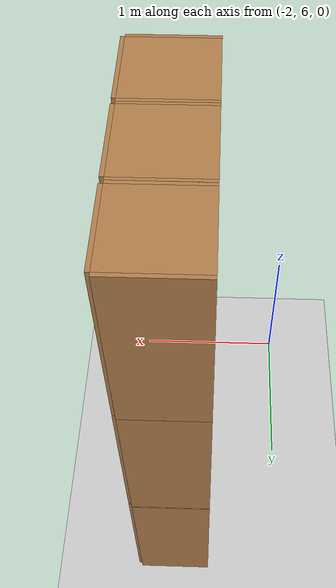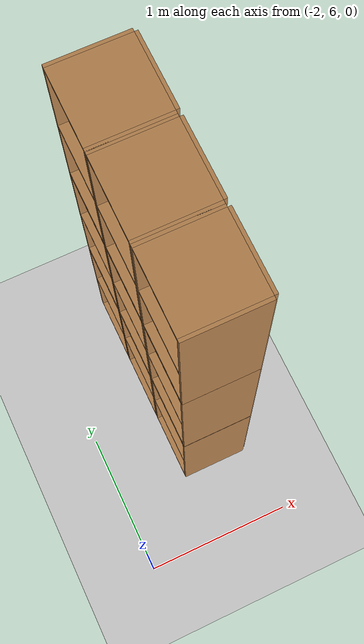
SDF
<sdf version="1.6">
 <world name="default">
  <model name="ground_plane">
   <static>1</static>
   <link name="link">
    <collision name="collision">
     <geometry><plane><normal>0 0 1</normal><size>100 100</size></plane></geometry>
     <surface>
      <contact><collide_bitmask>65535</collide_bitmask></contact>
      <friction><ode><mu>100</mu><mu2>50</mu2></ode></friction>
     </surface>
    </collision>
    <visual name="visual">
     <cast_shadows>0</cast_shadows>
     <geometry><plane><normal>0 0 1</normal><size>100 100</size></plane></geometry>
     <material>
      <script><uri>file://media/materials/scripts/gazebo.material</uri><name>Gazebo/Grey</name></script>
     </material>
    </visual>
   </link>
  </model>
  <model name="Locker18_clone_4_clone_2_clone_2">
   <model name="Locker18">
    <model name="Locker3">
     <model name="cabinet">
      <static>1</static>
      <link name="cabinet_bottom_plate">
       <inertial>
        <pose>0 0 -1 0 -0 0</pose>
        <inertia><ixx>2.05</ixx><ixy>0</ixy><ixz>0</ixz><iyy>2.05</iyy><iyz>0</iyz><izz>2.05</izz></inertia>
        <mass>25</mass>
       </inertial>
       <collision name="cabinet_bottom_plate_geom">
        <pose>0 0 0.01 0 -0 0</pose>
        <geometry><box><size>0.45 0.45 0.02</size></box></geometry>
       </collision>
       <visual name="cabinet_bottom_plate_geom_visual">
        <pose>0 0 0.01 0 -0 0</pose>
        <geometry><box><size>0.45 0.45 0.02</size></box></geometry>
        <material>
         <script><uri>file://media/materials/scripts/gazebo.material</uri><name>Gazebo/Wood</name></script>
        </material>
       </visual>
       <collision name="cabinet_bottom_plate_geom_cabinet_back_plate">
        <pose>0.235 0 0.51 0 -0 0</pose>
        <geometry><box><size>0.02 0.45 1.02</size></box></geometry>
       </collision>
       <visual name="cabinet_bottom_plate_geom_cabinet_back_plate_visual">
        <pose>0.235 0 0.51 0 -0 0</pose>
        <geometry><box><size>0.02 0.45 1.02</size></box></geometry>
        <material>
         <script><uri>file://media/materials/scripts/gazebo.material</uri><name>Gazebo/Wood</name></script>
        </material>
       </visual>
       <collision name="cabinet_bottom_plate_geom_cabinet_left_plate">
        <pose>0 0.235 0.51 0 -0 0</pose>
        <geometry><box><size>0.45 0.02 1.02</size></box></geometry>
       </collision>
       <visual name="cabinet_bottom_plate_geom_cabinet_left_plate_visual">
        <pose>0 0.235 0.51 0 -0 0</pose>
        <geometry><box><size>0.45 0.02 1.02</size></box></geometry>
        <material>
         <script><uri>file://media/materials/scripts/gazebo.material</uri><name>Gazebo/Wood</name></script>
        </material>
       </visual>
       <collision name="cabinet_bottom_plate_geom_cabinet_middle_plate">
        <pose>0 0 0.51 0 -0 0</pose>
        <geometry><box><size>0.45 0.45 0.02</size></box></geometry>
       </collision>
       <visual name="cabinet_bottom_plate_geom_cabinet_middle_plate_visual">
        <pose>0 0 0.51 0 -0 0</pose>
        <geometry><box><size>0.45 0.45 0.02</size></box></geometry>
        <material>
         <script><uri>file://media/materials/scripts/gazebo.material</uri><name>Gazebo/Wood</name></script>
        </material>
       </visual>
       <collision name="cabinet_bottom_plate_geom_cabinet_right_plate">
        <pose>0 -0.235 0.51 0 -0 0</pose>
        <geometry><box><size>0.45 0.02 1.02</size></box></geometry>
       </collision>
       <visual name="cabinet_bottom_plate_geom_cabinet_right_plate_visual">
        <pose>0 -0.235 0.51 0 -0 0</pose>
        <geometry><box><size>0.45 0.02 1.02</size></box></geometry>
        <material>
         <script><uri>file://media/materials/scripts/gazebo.material</uri><name>Gazebo/Wood</name></script>
        </material>
       </visual>
       <collision name="cabinet_bottom_plate_geom_cabinet_top_plate">
        <pose>0 0 1.01 0 -0 0</pose>
        <geometry><box><size>0.45 0.45 0.02</size></box></geometry>
       </collision>
       <visual name="cabinet_bottom_plate_geom_cabinet_top_plate_visual">
        <pose>0 0 1.01 0 -0 0</pose>
        <geometry><box><size>0.45 0.45 0.02</size></box></geometry>
        <material>
         <script><uri>file://media/materials/scripts/gazebo.material</uri><name>Gazebo/Wood</name></script>
        </material>
       </visual>
      </link>
      <pose>-0.676968 1.45758 0 0 -0 0</pose>
     </model>
     <model name="cabinet_clone">
      <static>1</static>
      <link name="cabinet_bottom_plate">
       <inertial>
        <pose>0 0 -1 0 -0 0</pose>
        <inertia><ixx>2.05</ixx><ixy>0</ixy><ixz>0</ixz><iyy>2.05</iyy><iyz>0</iyz><izz>2.05</izz></inertia>
        <mass>25</mass>
       </inertial>
       <collision name="cabinet_bottom_plate_geom">
        <pose>0 0 0.01 0 -0 0</pose>
        <geometry><box><size>0.45 0.45 0.02</size></box></geometry>
       </collision>
       <visual name="cabinet_bottom_plate_geom_visual">
        <pose>0 0 0.01 0 -0 0</pose>
        <geometry><box><size>0.45 0.45 0.02</size></box></geometry>
        <material>
         <script><uri>file://media/materials/scripts/gazebo.material</uri><name>Gazebo/Wood</name></script>
        </material>
       </visual>
       <collision name="cabinet_bottom_plate_geom_cabinet_back_plate">
        <pose>0.235 0 0.51 0 -0 0</pose>
        <geometry><box><size>0.02 0.45 1.02</size></box></geometry>
       </collision>
       <visual name="cabinet_bottom_plate_geom_cabinet_back_plate_visual">
        <pose>0.235 0 0.51 0 -0 0</pose>
        <geometry><box><size>0.02 0.45 1.02</size></box></geometry>
        <material>
         <script><uri>file://media/materials/scripts/gazebo.material</uri><name>Gazebo/Wood</name></script>
        </material>
       </visual>
       <collision name="cabinet_bottom_plate_geom_cabinet_left_plate">
        <pose>0 0.235 0.51 0 -0 0</pose>
        <geometry><box><size>0.45 0.02 1.02</size></box></geometry>
       </collision>
       <visual name="cabinet_bottom_plate_geom_cabinet_left_plate_visual">
        <pose>0 0.235 0.51 0 -0 0</pose>
        <geometry><box><size>0.45 0.02 1.02</size></box></geometry>
        <material>
         <script><uri>file://media/materials/scripts/gazebo.material</uri><name>Gazebo/Wood</name></script>
        </material>
       </visual>
       <collision name="cabinet_bottom_plate_geom_cabinet_middle_plate">
        <pose>0 0 0.51 0 -0 0</pose>
        <geometry><box><size>0.45 0.45 0.02</size></box></geometry>
       </collision>
       <visual name="cabinet_bottom_plate_geom_cabinet_middle_plate_visual">
        <pose>0 0 0.51 0 -0 0</pose>
        <geometry><box><size>0.45 0.45 0.02</size></box></geometry>
        <material>
         <script><uri>file://media/materials/scripts/gazebo.material</uri><name>Gazebo/Wood</name></script>
        </material>
       </visual>
       <collision name="cabinet_bottom_plate_geom_cabinet_right_plate">
        <pose>0 -0.235 0.51 0 -0 0</pose>
        <geometry><box><size>0.45 0.02 1.02</size></box></geometry>
       </collision>
       <visual name="cabinet_bottom_plate_geom_cabinet_right_plate_visual">
        <pose>0 -0.235 0.51 0 -0 0</pose>
        <geometry><box><size>0.45 0.02 1.02</size></box></geometry>
        <material>
         <script><uri>file://media/materials/scripts/gazebo.material</uri><name>Gazebo/Wood</name></script>
        </material>
       </visual>
       <collision name="cabinet_bottom_plate_geom_cabinet_top_plate">
        <pose>0 0 1.01 0 -0 0</pose>
        <geometry><box><size>0.45 0.45 0.02</size></box></geometry>
       </collision>
       <visual name="cabinet_bottom_plate_geom_cabinet_top_plate_visual">
        <pose>0 0 1.01 0 -0 0</pose>
        <geometry><box><size>0.45 0.45 0.02</size></box></geometry>
        <material>
         <script><uri>file://media/materials/scripts/gazebo.material</uri><name>Gazebo/Wood</name></script>
        </material>
       </visual>
      </link>
      <pose>-0.676968 0.970971 0 0 -0 0</pose>
     </model>
     <model name="cabinet_clone_0">
      <static>1</static>
      <link name="cabinet_bottom_plate">
       <inertial>
        <pose>0 0 -1 0 -0 0</pose>
        <inertia><ixx>2.05</ixx><ixy>0</ixy><ixz>0</ixz><iyy>2.05</iyy><iyz>0</iyz><izz>2.05</izz></inertia>
        <mass>25</mass>
       </inertial>
       <collision name="cabinet_bottom_plate_geom">
        <pose>0 0 0.01 0 -0 0</pose>
        <geometry><box><size>0.45 0.45 0.02</size></box></geometry>
       </collision>
       <visual name="cabinet_bottom_plate_geom_visual">
        <pose>0 0 0.01 0 -0 0</pose>
        <geometry><box><size>0.45 0.45 0.02</size></box></geometry>
        <material>
         <script><uri>file://media/materials/scripts/gazebo.material</uri><name>Gazebo/Wood</name></script>
        </material>
       </visual>
       <collision name="cabinet_bottom_plate_geom_cabinet_back_plate">
        <pose>0.235 0 0.51 0 -0 0</pose>
        <geometry><box><size>0.02 0.45 1.02</size></box></geometry>
       </collision>
       <visual name="cabinet_bottom_plate_geom_cabinet_back_plate_visual">
        <pose>0.235 0 0.51 0 -0 0</pose>
        <geometry><box><size>0.02 0.45 1.02</size></box></geometry>
        <material>
         <script><uri>file://media/materials/scripts/gazebo.material</uri><name>Gazebo/Wood</name></script>
        </material>
       </visual>
       <collision name="cabinet_bottom_plate_geom_cabinet_left_plate">
        <pose>0 0.235 0.51 0 -0 0</pose>
        <geometry><box><size>0.45 0.02 1.02</size></box></geometry>
       </collision>
       <visual name="cabinet_bottom_plate_geom_cabinet_left_plate_visual">
        <pose>0 0.235 0.51 0 -0 0</pose>
        <geometry><box><size>0.45 0.02 1.02</size></box></geometry>
        <material>
         <script><uri>file://media/materials/scripts/gazebo.material</uri><name>Gazebo/Wood</name></script>
        </material>
       </visual>
       <collision name="cabinet_bottom_plate_geom_cabinet_middle_plate">
        <pose>0 0 0.51 0 -0 0</pose>
        <geometry><box><size>0.45 0.45 0.02</size></box></geometry>
       </collision>
       <visual name="cabinet_bottom_plate_geom_cabinet_middle_plate_visual">
        <pose>0 0 0.51 0 -0 0</pose>
        <geometry><box><size>0.45 0.45 0.02</size></box></geometry>
        <material>
         <script><uri>file://media/materials/scripts/gazebo.material</uri><name>Gazebo/Wood</name></script>
        </material>
       </visual>
       <collision name="cabinet_bottom_plate_geom_cabinet_right_plate">
        <pose>0 -0.235 0.51 0 -0 0</pose>
        <geometry><box><size>0.45 0.02 1.02</size></box></geometry>
       </collision>
       <visual name="cabinet_bottom_plate_geom_cabinet_right_plate_visual">
        <pose>0 -0.235 0.51 0 -0 0</pose>
        <geometry><box><size>0.45 0.02 1.02</size></box></geometry>
        <material>
         <script><uri>file://media/materials/scripts/gazebo.material</uri><name>Gazebo/Wood</name></script>
        </material>
       </visual>
       <collision name="cabinet_bottom_plate_geom_cabinet_top_plate">
        <pose>0 0 1.01 0 -0 0</pose>
        <geometry><box><size>0.45 0.45 0.02</size></box></geometry>
       </collision>
       <visual name="cabinet_bottom_plate_geom_cabinet_top_plate_visual">
        <pose>0 0 1.01 0 -0 0</pose>
        <geometry><box><size>0.45 0.45 0.02</size></box></geometry>
        <material>
         <script><uri>file://media/materials/scripts/gazebo.material</uri><name>Gazebo/Wood</name></script>
        </material>
       </visual>
      </link>
      <pose>-0.676968 0.48391 0 0 -0 0</pose>
     </model>
     <static>0</static>
     <pose>0 3e-06 -1.02763 0 -0 0</pose>
    </model>
    <model name="Locker3_clone">
     <model name="cabinet">
      <static>1</static>
      <link name="cabinet_bottom_plate">
       <inertial>
        <pose>0 0 -1 0 -0 0</pose>
        <inertia><ixx>2.05</ixx><ixy>0</ixy><ixz>0</ixz><iyy>2.05</iyy><iyz>0</iyz><izz>2.05</izz></inertia>
        <mass>25</mass>
       </inertial>
       <collision name="cabinet_bottom_plate_geom">
        <pose>0 0 0.01 0 -0 0</pose>
        <geometry><box><size>0.45 0.45 0.02</size></box></geometry>
       </collision>
       <visual name="cabinet_bottom_plate_geom_visual">
        <pose>0 0 0.01 0 -0 0</pose>
        <geometry><box><size>0.45 0.45 0.02</size></box></geometry>
        <material>
         <script><uri>file://media/materials/scripts/gazebo.material</uri><name>Gazebo/Wood</name></script>
        </material>
       </visual>
       <collision name="cabinet_bottom_plate_geom_cabinet_back_plate">
        <pose>0.235 0 0.51 0 -0 0</pose>
        <geometry><box><size>0.02 0.45 1.02</size></box></geometry>
       </collision>
       <visual name="cabinet_bottom_plate_geom_cabinet_back_plate_visual">
        <pose>0.235 0 0.51 0 -0 0</pose>
        <geometry><box><size>0.02 0.45 1.02</size></box></geometry>
        <material>
         <script><uri>file://media/materials/scripts/gazebo.material</uri><name>Gazebo/Wood</name></script>
        </material>
       </visual>
       <collision name="cabinet_bottom_plate_geom_cabinet_left_plate">
        <pose>0 0.235 0.51 0 -0 0</pose>
        <geometry><box><size>0.45 0.02 1.02</size></box></geometry>
       </collision>
       <visual name="cabinet_bottom_plate_geom_cabinet_left_plate_visual">
        <pose>0 0.235 0.51 0 -0 0</pose>
        <geometry><box><size>0.45 0.02 1.02</size></box></geometry>
        <material>
         <script><uri>file://media/materials/scripts/gazebo.material</uri><name>Gazebo/Wood</name></script>
        </material>
       </visual>
       <collision name="cabinet_bottom_plate_geom_cabinet_middle_plate">
        <pose>0 0 0.51 0 -0 0</pose>
        <geometry><box><size>0.45 0.45 0.02</size></box></geometry>
       </collision>
       <visual name="cabinet_bottom_plate_geom_cabinet_middle_plate_visual">
        <pose>0 0 0.51 0 -0 0</pose>
        <geometry><box><size>0.45 0.45 0.02</size></box></geometry>
        <material>
         <script><uri>file://media/materials/scripts/gazebo.material</uri><name>Gazebo/Wood</name></script>
        </material>
       </visual>
       <collision name="cabinet_bottom_plate_geom_cabinet_right_plate">
        <pose>0 -0.235 0.51 0 -0 0</pose>
        <geometry><box><size>0.45 0.02 1.02</size></box></geometry>
       </collision>
       <visual name="cabinet_bottom_plate_geom_cabinet_right_plate_visual">
        <pose>0 -0.235 0.51 0 -0 0</pose>
        <geometry><box><size>0.45 0.02 1.02</size></box></geometry>
        <material>
         <script><uri>file://media/materials/scripts/gazebo.material</uri><name>Gazebo/Wood</name></script>
        </material>
       </visual>
       <collision name="cabinet_bottom_plate_geom_cabinet_top_plate">
        <pose>0 0 1.01 0 -0 0</pose>
        <geometry><box><size>0.45 0.45 0.02</size></box></geometry>
       </collision>
       <visual name="cabinet_bottom_plate_geom_cabinet_top_plate_visual">
        <pose>0 0 1.01 0 -0 0</pose>
        <geometry><box><size>0.45 0.45 0.02</size></box></geometry>
        <material>
         <script><uri>file://media/materials/scripts/gazebo.material</uri><name>Gazebo/Wood</name></script>
        </material>
       </visual>
      </link>
      <pose>-0.676968 1.45758 0 0 -0 0</pose>
     </model>
     <model name="cabinet_clone">
      <static>1</static>
      <link name="cabinet_bottom_plate">
       <inertial>
        <pose>0 0 -1 0 -0 0</pose>
        <inertia><ixx>2.05</ixx><ixy>0</ixy><ixz>0</ixz><iyy>2.05</iyy><iyz>0</iyz><izz>2.05</izz></inertia>
        <mass>25</mass>
       </inertial>
       <collision name="cabinet_bottom_plate_geom">
        <pose>0 0 0.01 0 -0 0</pose>
        <geometry><box><size>0.45 0.45 0.02</size></box></geometry>
       </collision>
       <visual name="cabinet_bottom_plate_geom_visual">
        <pose>0 0 0.01 0 -0 0</pose>
        <geometry><box><size>0.45 0.45 0.02</size></box></geometry>
        <material>
         <script><uri>file://media/materials/scripts/gazebo.material</uri><name>Gazebo/Wood</name></script>
        </material>
       </visual>
       <collision name="cabinet_bottom_plate_geom_cabinet_back_plate">
        <pose>0.235 0 0.51 0 -0 0</pose>
        <geometry><box><size>0.02 0.45 1.02</size></box></geometry>
       </collision>
       <visual name="cabinet_bottom_plate_geom_cabinet_back_plate_visual">
        <pose>0.235 0 0.51 0 -0 0</pose>
        <geometry><box><size>0.02 0.45 1.02</size></box></geometry>
        <material>
         <script><uri>file://media/materials/scripts/gazebo.material</uri><name>Gazebo/Wood</name></script>
        </material>
       </visual>
       <collision name="cabinet_bottom_plate_geom_cabinet_left_plate">
        <pose>0 0.235 0.51 0 -0 0</pose>
        <geometry><box><size>0.45 0.02 1.02</size></box></geometry>
       </collision>
       <visual name="cabinet_bottom_plate_geom_cabinet_left_plate_visual">
        <pose>0 0.235 0.51 0 -0 0</pose>
        <geometry><box><size>0.45 0.02 1.02</size></box></geometry>
        <material>
         <script><uri>file://media/materials/scripts/gazebo.material</uri><name>Gazebo/Wood</name></script>
        </material>
       </visual>
       <collision name="cabinet_bottom_plate_geom_cabinet_middle_plate">
        <pose>0 0 0.51 0 -0 0</pose>
        <geometry><box><size>0.45 0.45 0.02</size></box></geometry>
       </collision>
       <visual name="cabinet_bottom_plate_geom_cabinet_middle_plate_visual">
        <pose>0 0 0.51 0 -0 0</pose>
        <geometry><box><size>0.45 0.45 0.02</size></box></geometry>
        <material>
         <script><uri>file://media/materials/scripts/gazebo.material</uri><name>Gazebo/Wood</name></script>
        </material>
       </visual>
       <collision name="cabinet_bottom_plate_geom_cabinet_right_plate">
        <pose>0 -0.235 0.51 0 -0 0</pose>
        <geometry><box><size>0.45 0.02 1.02</size></box></geometry>
       </collision>
       <visual name="cabinet_bottom_plate_geom_cabinet_right_plate_visual">
        <pose>0 -0.235 0.51 0 -0 0</pose>
        <geometry><box><size>0.45 0.02 1.02</size></box></geometry>
        <material>
         <script><uri>file://media/materials/scripts/gazebo.material</uri><name>Gazebo/Wood</name></script>
        </material>
       </visual>
       <collision name="cabinet_bottom_plate_geom_cabinet_top_plate">
        <pose>0 0 1.01 0 -0 0</pose>
        <geometry><box><size>0.45 0.45 0.02</size></box></geometry>
       </collision>
       <visual name="cabinet_bottom_plate_geom_cabinet_top_plate_visual">
        <pose>0 0 1.01 0 -0 0</pose>
        <geometry><box><size>0.45 0.45 0.02</size></box></geometry>
        <material>
         <script><uri>file://media/materials/scripts/gazebo.material</uri><name>Gazebo/Wood</name></script>
        </material>
       </visual>
      </link>
      <pose>-0.676968 0.970971 0 0 -0 0</pose>
     </model>
     <model name="cabinet_clone_0">
      <static>1</static>
      <link name="cabinet_bottom_plate">
       <inertial>
        <pose>0 0 -1 0 -0 0</pose>
        <inertia><ixx>2.05</ixx><ixy>0</ixy><ixz>0</ixz><iyy>2.05</iyy><iyz>0</iyz><izz>2.05</izz></inertia>
        <mass>25</mass>
       </inertial>
       <collision name="cabinet_bottom_plate_geom">
        <pose>0 0 0.01 0 -0 0</pose>
        <geometry><box><size>0.45 0.45 0.02</size></box></geometry>
       </collision>
       <visual name="cabinet_bottom_plate_geom_visual">
        <pose>0 0 0.01 0 -0 0</pose>
        <geometry><box><size>0.45 0.45 0.02</size></box></geometry>
        <material>
         <script><uri>file://media/materials/scripts/gazebo.material</uri><name>Gazebo/Wood</name></script>
        </material>
       </visual>
       <collision name="cabinet_bottom_plate_geom_cabinet_back_plate">
        <pose>0.235 0 0.51 0 -0 0</pose>
        <geometry><box><size>0.02 0.45 1.02</size></box></geometry>
       </collision>
       <visual name="cabinet_bottom_plate_geom_cabinet_back_plate_visual">
        <pose>0.235 0 0.51 0 -0 0</pose>
        <geometry><box><size>0.02 0.45 1.02</size></box></geometry>
        <material>
         <script><uri>file://media/materials/scripts/gazebo.material</uri><name>Gazebo/Wood</name></script>
        </material>
       </visual>
       <collision name="cabinet_bottom_plate_geom_cabinet_left_plate">
        <pose>0 0.235 0.51 0 -0 0</pose>
        <geometry><box><size>0.45 0.02 1.02</size></box></geometry>
       </collision>
       <visual name="cabinet_bottom_plate_geom_cabinet_left_plate_visual">
        <pose>0 0.235 0.51 0 -0 0</pose>
        <geometry><box><size>0.45 0.02 1.02</size></box></geometry>
        <material>
         <script><uri>file://media/materials/scripts/gazebo.material</uri><name>Gazebo/Wood</name></script>
        </material>
       </visual>
       <collision name="cabinet_bottom_plate_geom_cabinet_middle_plate">
        <pose>0 0 0.51 0 -0 0</pose>
        <geometry><box><size>0.45 0.45 0.02</size></box></geometry>
       </collision>
       <visual name="cabinet_bottom_plate_geom_cabinet_middle_plate_visual">
        <pose>0 0 0.51 0 -0 0</pose>
        <geometry><box><size>0.45 0.45 0.02</size></box></geometry>
        <material>
         <script><uri>file://media/materials/scripts/gazebo.material</uri><name>Gazebo/Wood</name></script>
        </material>
       </visual>
       <collision name="cabinet_bottom_plate_geom_cabinet_right_plate">
        <pose>0 -0.235 0.51 0 -0 0</pose>
        <geometry><box><size>0.45 0.02 1.02</size></box></geometry>
       </collision>
       <visual name="cabinet_bottom_plate_geom_cabinet_right_plate_visual">
        <pose>0 -0.235 0.51 0 -0 0</pose>
        <geometry><box><size>0.45 0.02 1.02</size></box></geometry>
        <material>
         <script><uri>file://media/materials/scripts/gazebo.material</uri><name>Gazebo/Wood</name></script>
        </material>
       </visual>
       <collision name="cabinet_bottom_plate_geom_cabinet_top_plate">
        <pose>0 0 1.01 0 -0 0</pose>
        <geometry><box><size>0.45 0.45 0.02</size></box></geometry>
       </collision>
       <visual name="cabinet_bottom_plate_geom_cabinet_top_plate_visual">
        <pose>0 0 1.01 0 -0 0</pose>
        <geometry><box><size>0.45 0.45 0.02</size></box></geometry>
        <material>
         <script><uri>file://media/materials/scripts/gazebo.material</uri><name>Gazebo/Wood</name></script>
        </material>
       </visual>
      </link>
      <pose>-0.676968 0.48391 0 0 -0 0</pose>
     </model>
     <static>0</static>
     <pose>0 3e-06 0.003717 0 -0 0</pose>
    </model>
    <model name="Locker3_clone_clone">
     <model name="cabinet">
      <static>1</static>
      <link name="cabinet_bottom_plate">
       <inertial>
        <pose>0 0 -1 0 -0 0</pose>
        <inertia><ixx>2.05</ixx><ixy>0</ixy><ixz>0</ixz><iyy>2.05</iyy><iyz>0</iyz><izz>2.05</izz></inertia>
        <mass>25</mass>
       </inertial>
       <collision name="cabinet_bottom_plate_geom">
        <pose>0 0 0.01 0 -0 0</pose>
        <geometry><box><size>0.45 0.45 0.02</size></box></geometry>
       </collision>
       <visual name="cabinet_bottom_plate_geom_visual">
        <pose>0 0 0.01 0 -0 0</pose>
        <geometry><box><size>0.45 0.45 0.02</size></box></geometry>
        <material>
         <script><uri>file://media/materials/scripts/gazebo.material</uri><name>Gazebo/Wood</name></script>
        </material>
       </visual>
       <collision name="cabinet_bottom_plate_geom_cabinet_back_plate">
        <pose>0.235 0 0.51 0 -0 0</pose>
        <geometry><box><size>0.02 0.45 1.02</size></box></geometry>
       </collision>
       <visual name="cabinet_bottom_plate_geom_cabinet_back_plate_visual">
        <pose>0.235 0 0.51 0 -0 0</pose>
        <geometry><box><size>0.02 0.45 1.02</size></box></geometry>
        <material>
         <script><uri>file://media/materials/scripts/gazebo.material</uri><name>Gazebo/Wood</name></script>
        </material>
       </visual>
       <collision name="cabinet_bottom_plate_geom_cabinet_left_plate">
        <pose>0 0.235 0.51 0 -0 0</pose>
        <geometry><box><size>0.45 0.02 1.02</size></box></geometry>
       </collision>
       <visual name="cabinet_bottom_plate_geom_cabinet_left_plate_visual">
        <pose>0 0.235 0.51 0 -0 0</pose>
        <geometry><box><size>0.45 0.02 1.02</size></box></geometry>
        <material>
         <script><uri>file://media/materials/scripts/gazebo.material</uri><name>Gazebo/Wood</name></script>
        </material>
       </visual>
       <collision name="cabinet_bottom_plate_geom_cabinet_middle_plate">
        <pose>0 0 0.51 0 -0 0</pose>
        <geometry><box><size>0.45 0.45 0.02</size></box></geometry>
       </collision>
       <visual name="cabinet_bottom_plate_geom_cabinet_middle_plate_visual">
        <pose>0 0 0.51 0 -0 0</pose>
        <geometry><box><size>0.45 0.45 0.02</size></box></geometry>
        <material>
         <script><uri>file://media/materials/scripts/gazebo.material</uri><name>Gazebo/Wood</name></script>
        </material>
       </visual>
       <collision name="cabinet_bottom_plate_geom_cabinet_right_plate">
        <pose>0 -0.235 0.51 0 -0 0</pose>
        <geometry><box><size>0.45 0.02 1.02</size></box></geometry>
       </collision>
       <visual name="cabinet_bottom_plate_geom_cabinet_right_plate_visual">
        <pose>0 -0.235 0.51 0 -0 0</pose>
        <geometry><box><size>0.45 0.02 1.02</size></box></geometry>
        <material>
         <script><uri>file://media/materials/scripts/gazebo.material</uri><name>Gazebo/Wood</name></script>
        </material>
       </visual>
       <collision name="cabinet_bottom_plate_geom_cabinet_top_plate">
        <pose>0 0 1.01 0 -0 0</pose>
        <geometry><box><size>0.45 0.45 0.02</size></box></geometry>
       </collision>
       <visual name="cabinet_bottom_plate_geom_cabinet_top_plate_visual">
        <pose>0 0 1.01 0 -0 0</pose>
        <geometry><box><size>0.45 0.45 0.02</size></box></geometry>
        <material>
         <script><uri>file://media/materials/scripts/gazebo.material</uri><name>Gazebo/Wood</name></script>
        </material>
       </visual>
      </link>
      <pose>-0.676968 1.45758 0 0 -0 0</pose>
     </model>
     <model name="cabinet_clone">
      <static>1</static>
      <link name="cabinet_bottom_plate">
       <inertial>
        <pose>0 0 -1 0 -0 0</pose>
        <inertia><ixx>2.05</ixx><ixy>0</ixy><ixz>0</ixz><iyy>2.05</iyy><iyz>0</iyz><izz>2.05</izz></inertia>
        <mass>25</mass>
       </inertial>
       <collision name="cabinet_bottom_plate_geom">
        <pose>0 0 0.01 0 -0 0</pose>
        <geometry><box><size>0.45 0.45 0.02</size></box></geometry>
       </collision>
       <visual name="cabinet_bottom_plate_geom_visual">
        <pose>0 0 0.01 0 -0 0</pose>
        <geometry><box><size>0.45 0.45 0.02</size></box></geometry>
        <material>
         <script><uri>file://media/materials/scripts/gazebo.material</uri><name>Gazebo/Wood</name></script>
        </material>
       </visual>
       <collision name="cabinet_bottom_plate_geom_cabinet_back_plate">
        <pose>0.235 0 0.51 0 -0 0</pose>
        <geometry><box><size>0.02 0.45 1.02</size></box></geometry>
       </collision>
       <visual name="cabinet_bottom_plate_geom_cabinet_back_plate_visual">
        <pose>0.235 0 0.51 0 -0 0</pose>
        <geometry><box><size>0.02 0.45 1.02</size></box></geometry>
        <material>
         <script><uri>file://media/materials/scripts/gazebo.material</uri><name>Gazebo/Wood</name></script>
        </material>
       </visual>
       <collision name="cabinet_bottom_plate_geom_cabinet_left_plate">
        <pose>0 0.235 0.51 0 -0 0</pose>
        <geometry><box><size>0.45 0.02 1.02</size></box></geometry>
       </collision>
       <visual name="cabinet_bottom_plate_geom_cabinet_left_plate_visual">
        <pose>0 0.235 0.51 0 -0 0</pose>
        <geometry><box><size>0.45 0.02 1.02</size></box></geometry>
        <material>
         <script><uri>file://media/materials/scripts/gazebo.material</uri><name>Gazebo/Wood</name></script>
        </material>
       </visual>
       <collision name="cabinet_bottom_plate_geom_cabinet_middle_plate">
        <pose>0 0 0.51 0 -0 0</pose>
        <geometry><box><size>0.45 0.45 0.02</size></box></geometry>
       </collision>
       <visual name="cabinet_bottom_plate_geom_cabinet_middle_plate_visual">
        <pose>0 0 0.51 0 -0 0</pose>
        <geometry><box><size>0.45 0.45 0.02</size></box></geometry>
        <material>
         <script><uri>file://media/materials/scripts/gazebo.material</uri><name>Gazebo/Wood</name></script>
        </material>
       </visual>
       <collision name="cabinet_bottom_plate_geom_cabinet_right_plate">
        <pose>0 -0.235 0.51 0 -0 0</pose>
        <geometry><box><size>0.45 0.02 1.02</size></box></geometry>
       </collision>
       <visual name="cabinet_bottom_plate_geom_cabinet_right_plate_visual">
        <pose>0 -0.235 0.51 0 -0 0</pose>
        <geometry><box><size>0.45 0.02 1.02</size></box></geometry>
        <material>
         <script><uri>file://media/materials/scripts/gazebo.material</uri><name>Gazebo/Wood</name></script>
        </material>
       </visual>
       <collision name="cabinet_bottom_plate_geom_cabinet_top_plate">
        <pose>0 0 1.01 0 -0 0</pose>
        <geometry><box><size>0.45 0.45 0.02</size></box></geometry>
       </collision>
       <visual name="cabinet_bottom_plate_geom_cabinet_top_plate_visual">
        <pose>0 0 1.01 0 -0 0</pose>
        <geometry><box><size>0.45 0.45 0.02</size></box></geometry>
        <material>
         <script><uri>file://media/materials/scripts/gazebo.material</uri><name>Gazebo/Wood</name></script>
        </material>
       </visual>
      </link>
      <pose>-0.676968 0.970971 0 0 -0 0</pose>
     </model>
     <model name="cabinet_clone_0">
      <static>1</static>
      <link name="cabinet_bottom_plate">
       <inertial>
        <pose>0 0 -1 0 -0 0</pose>
        <inertia><ixx>2.05</ixx><ixy>0</ixy><ixz>0</ixz><iyy>2.05</iyy><iyz>0</iyz><izz>2.05</izz></inertia>
        <mass>25</mass>
       </inertial>
       <collision name="cabinet_bottom_plate_geom">
        <pose>0 0 0.01 0 -0 0</pose>
        <geometry><box><size>0.45 0.45 0.02</size></box></geometry>
       </collision>
       <visual name="cabinet_bottom_plate_geom_visual">
        <pose>0 0 0.01 0 -0 0</pose>
        <geometry><box><size>0.45 0.45 0.02</size></box></geometry>
        <material>
         <script><uri>file://media/materials/scripts/gazebo.material</uri><name>Gazebo/Wood</name></script>
        </material>
       </visual>
       <collision name="cabinet_bottom_plate_geom_cabinet_back_plate">
        <pose>0.235 0 0.51 0 -0 0</pose>
        <geometry><box><size>0.02 0.45 1.02</size></box></geometry>
       </collision>
       <visual name="cabinet_bottom_plate_geom_cabinet_back_plate_visual">
        <pose>0.235 0 0.51 0 -0 0</pose>
        <geometry><box><size>0.02 0.45 1.02</size></box></geometry>
        <material>
         <script><uri>file://media/materials/scripts/gazebo.material</uri><name>Gazebo/Wood</name></script>
        </material>
       </visual>
       <collision name="cabinet_bottom_plate_geom_cabinet_left_plate">
        <pose>0 0.235 0.51 0 -0 0</pose>
        <geometry><box><size>0.45 0.02 1.02</size></box></geometry>
       </collision>
       <visual name="cabinet_bottom_plate_geom_cabinet_left_plate_visual">
        <pose>0 0.235 0.51 0 -0 0</pose>
        <geometry><box><size>0.45 0.02 1.02</size></box></geometry>
        <material>
         <script><uri>file://media/materials/scripts/gazebo.material</uri><name>Gazebo/Wood</name></script>
        </material>
       </visual>
       <collision name="cabinet_bottom_plate_geom_cabinet_middle_plate">
        <pose>0 0 0.51 0 -0 0</pose>
        <geometry><box><size>0.45 0.45 0.02</size></box></geometry>
       </collision>
       <visual name="cabinet_bottom_plate_geom_cabinet_middle_plate_visual">
        <pose>0 0 0.51 0 -0 0</pose>
        <geometry><box><size>0.45 0.45 0.02</size></box></geometry>
        <material>
         <script><uri>file://media/materials/scripts/gazebo.material</uri><name>Gazebo/Wood</name></script>
        </material>
       </visual>
       <collision name="cabinet_bottom_plate_geom_cabinet_right_plate">
        <pose>0 -0.235 0.51 0 -0 0</pose>
        <geometry><box><size>0.45 0.02 1.02</size></box></geometry>
       </collision>
       <visual name="cabinet_bottom_plate_geom_cabinet_right_plate_visual">
        <pose>0 -0.235 0.51 0 -0 0</pose>
        <geometry><box><size>0.45 0.02 1.02</size></box></geometry>
        <material>
         <script><uri>file://media/materials/scripts/gazebo.material</uri><name>Gazebo/Wood</name></script>
        </material>
       </visual>
       <collision name="cabinet_bottom_plate_geom_cabinet_top_plate">
        <pose>0 0 1.01 0 -0 0</pose>
        <geometry><box><size>0.45 0.45 0.02</size></box></geometry>
       </collision>
       <visual name="cabinet_bottom_plate_geom_cabinet_top_plate_visual">
        <pose>0 0 1.01 0 -0 0</pose>
        <geometry><box><size>0.45 0.45 0.02</size></box></geometry>
        <material>
         <script><uri>file://media/materials/scripts/gazebo.material</uri><name>Gazebo/Wood</name></script>
        </material>
       </visual>
      </link>
      <pose>-0.676968 0.48391 0 0 -0 0</pose>
     </model>
     <static>0</static>
     <pose>0 3e-06 1.02391 0 -0 0</pose>
    </model>
    <static>0</static>
    <pose>-0 4e-06 4e-06 0 -0 0</pose>
   </model>
   <static>0</static>
   <pose>-0.627236 6.24174 1.08672 0 -0 0</pose>
  </model>
 </world>
</sdf>
